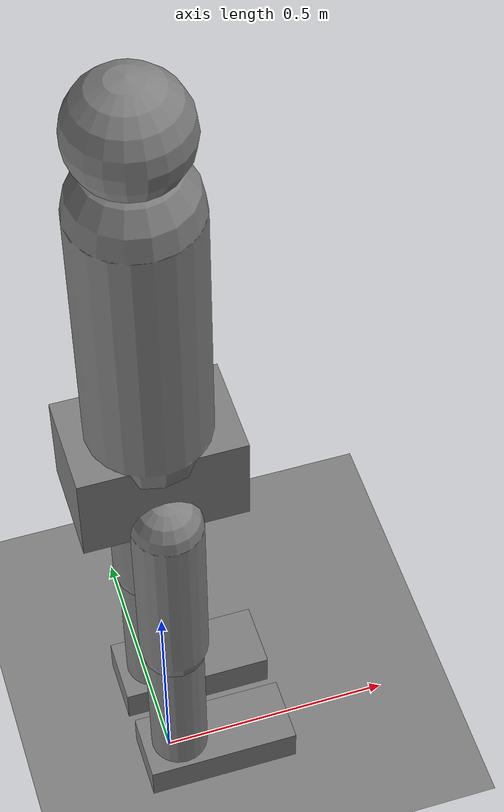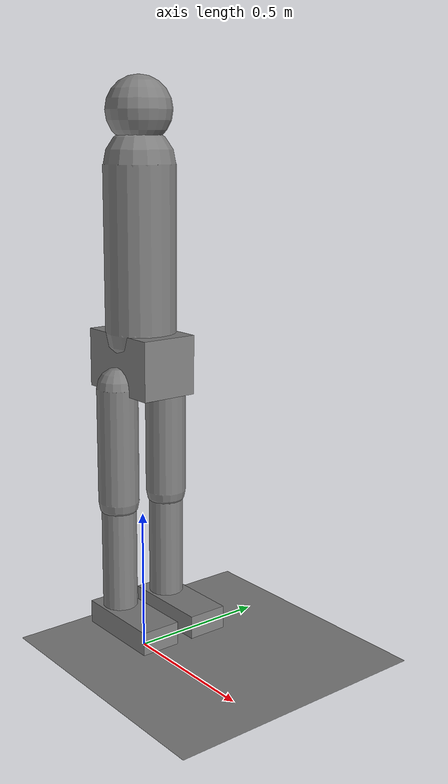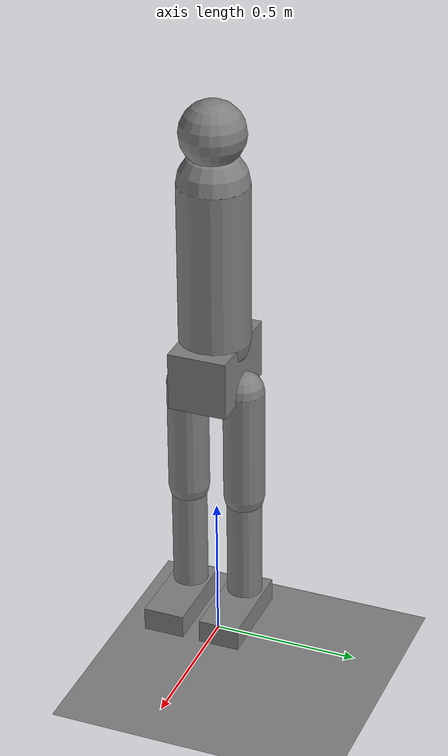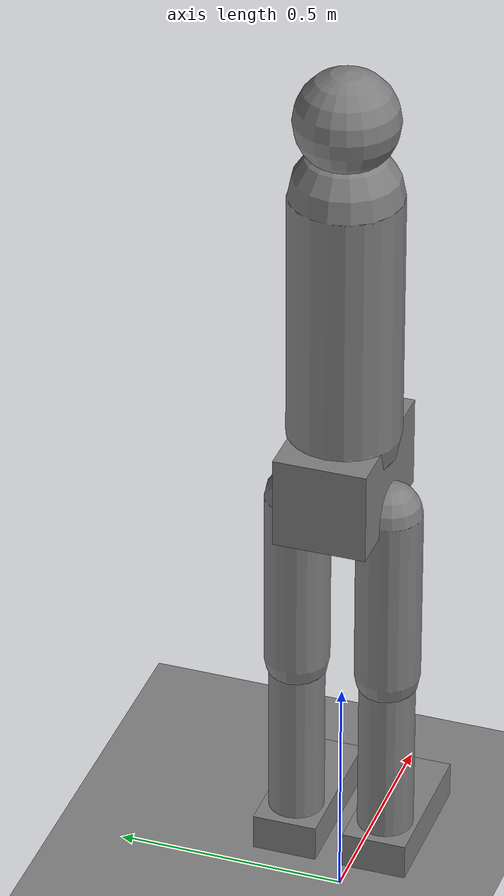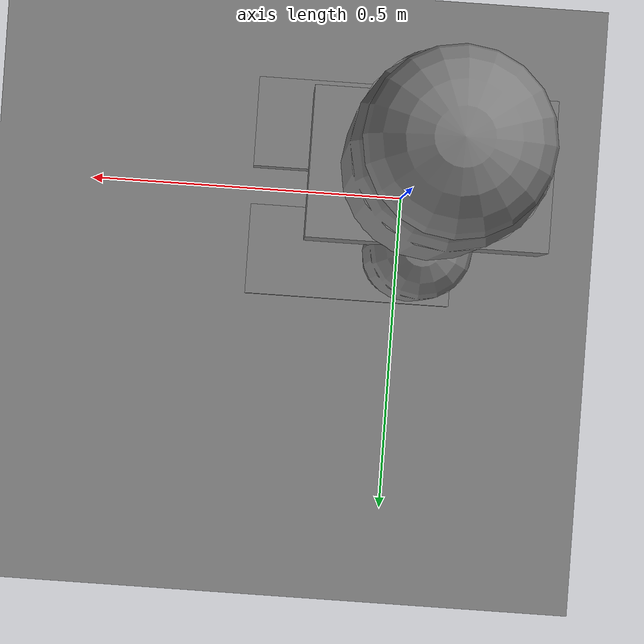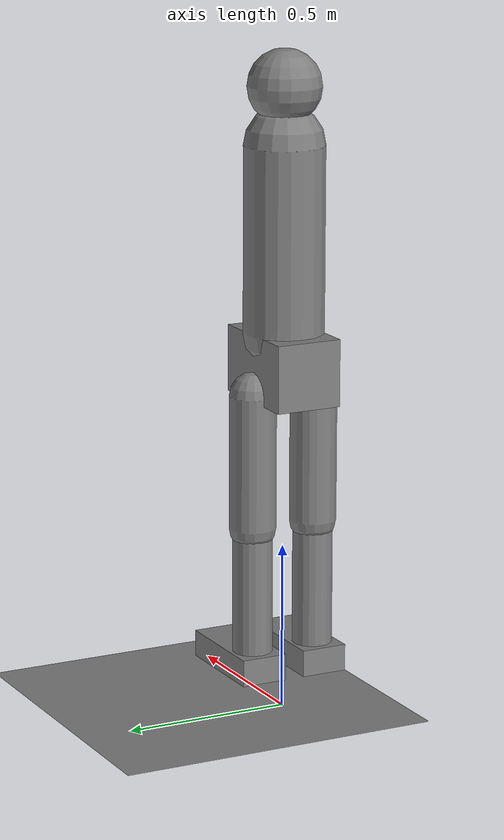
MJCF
<mujoco model="gym2humanoid">

    <option gravity="0 0 -9.81"/>

    <worldbody>

        <geom
            name="floor"
            type="plane"
            size="5 5 0.1"
            pos="0 0 0"
        />

        <body name="pelvis" pos="0 0 1.05">

            <joint
                name="pelvis_z"
                type="slide"
                axis="0 0 1"
                range="-0.45 0.05"
                damping="20"
            />

            <geom
                name="pelvis_geom"
                type="box"
                size="0.16 0.10 0.10"
            />

            <geom
                name="torso"
                type="capsule"
                fromto="0 0 0.10 0 0 0.65"
                size="0.12"
            />

            <geom
                name="head"
                type="sphere"
                pos="0 0 0.82"
                size="0.11"
            />

            <body name="right_thigh" pos="0 -0.10 -0.08">

                <joint
                    name="right_hip"
                    type="hinge"
                    axis="0 1 0"
                    range="-120 60"
                />

                <geom
                    type="capsule"
                    fromto="0 0 0 0 0 -0.40"
                    size="0.07"
                />

                <body name="right_shin" pos="0 0 -0.40">

                    <joint
                        name="right_knee"
                        type="hinge"
                        axis="0 1 0"
                        range="0 160"
                    />

                    <geom
                        type="capsule"
                        fromto="0 0 0 0 0 -0.38"
                        size="0.06"
                    />

                    <body name="right_foot" pos="0 0 -0.38">

                        <joint
                            name="right_ankle"
                            type="hinge"
                            axis="0 1 0"
                            range="-45 45"
                        />

                        <geom
                            type="box"
                            pos="0.08 0 -0.04"
                            size="0.16 0.07 0.04"
                        />

                    </body>

                </body>

            </body>

            <body name="left_thigh" pos="0 0.10 -0.08">

                <joint
                    name="left_hip"
                    type="hinge"
                    axis="0 1 0"
                    range="-120 60"
                />

                <geom
                    type="capsule"
                    fromto="0 0 0 0 0 -0.40"
                    size="0.07"
                />

                <body name="left_shin" pos="0 0 -0.40">

                    <joint
                        name="left_knee"
                        type="hinge"
                        axis="0 1 0"
                        range="0 160"
                    />

                    <geom
                        type="capsule"
                        fromto="0 0 0 0 0 -0.38"
                        size="0.06"
                    />

                    <body name="left_foot" pos="0 0 -0.38">

                        <joint
                            name="left_ankle"
                            type="hinge"
                            axis="0 1 0"
                            range="-45 45"
                        />

                        <geom
                            type="box"
                            pos="0.08 0 -0.04"
                            size="0.16 0.07 0.04"
                        />

                    </body>

                </body>

            </body>

        </body>

    </worldbody>

    <actuator>
    <position
        name="pelvis_motor"
        joint="pelvis_z"
        kp="200"
    />
    <position name="right_hip_motor" joint="right_hip" kp="100"/>
    <position name="right_knee_motor" joint="right_knee" kp="100"/>
    <position name="right_ankle_motor" joint="right_ankle" kp="100"/>

    <position name="left_hip_motor" joint="left_hip" kp="100"/>
    <position name="left_knee_motor" joint="left_knee" kp="100"/>
    <position name="left_ankle_motor" joint="left_ankle" kp="100"/>
</actuator>
</mujoco>
